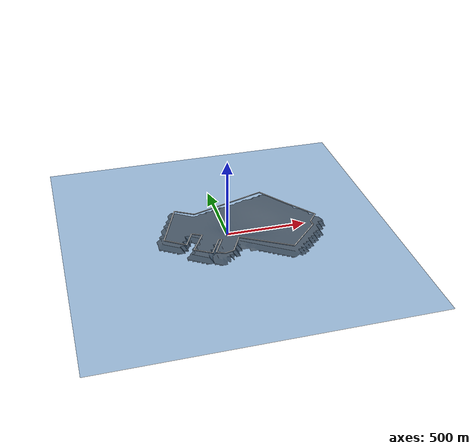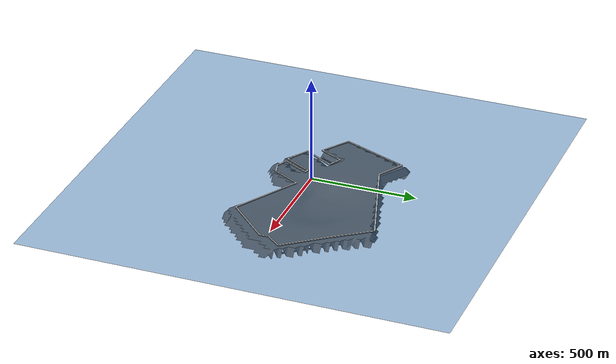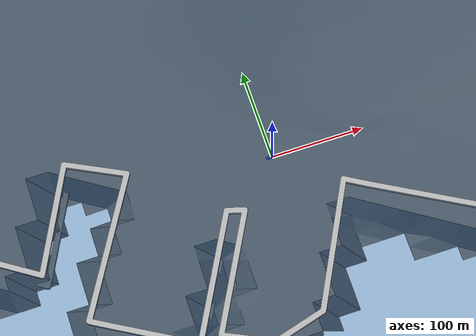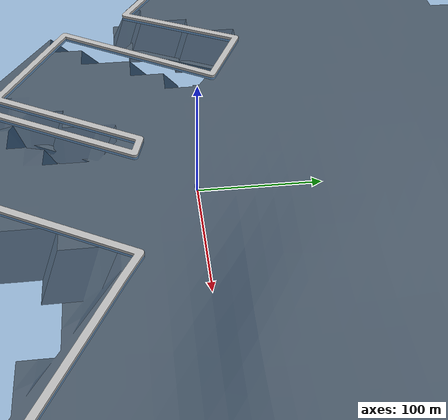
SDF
<?xml version="1.0" ?>
<sdf version="1.9">
  <world name="ocean_world">

    <plugin filename="gz-sim-physics-system" name="gz::sim::systems::Physics"/>
    <plugin filename="gz-sim-user-commands-system" name="gz::sim::systems::UserCommands"/>
    <plugin filename="gz-sim-scene-broadcaster-system" name="gz::sim::systems::SceneBroadcaster"/>
    <plugin filename="gz-sim-navsat-system" name="gz::sim::systems::NavSat"/>
    <plugin filename="gz-sim-sensors-system" name="gz::sim::systems::Sensors">
      <render_engine>ogre</render_engine>
    </plugin>

    <gravity>0 0 -9.81</gravity>

    <spherical_coordinates>
      <surface_model>EARTH_WGS84</surface_model>
      <world_frame_orientation>ENU</world_frame_orientation>
      <latitude_deg>36.509513</latitude_deg>
      <longitude_deg>-6.263074</longitude_deg>
      <elevation>0.0</elevation>
      <heading_deg>0.0</heading_deg>
    </spherical_coordinates>

    <model name="water_plane">
      <static>true</static>
      <pose>0 0 0.0 0 0 0</pose>
      <link name="link">
        <visual name="water_visual">
          <geometry>
            <plane>
              <normal>0 0 0</normal>
              <size>2000 2000</size>
            </plane>
          </geometry>
          <material>
            <ambient>0.0 0.3 0.6 0.4</ambient>
            <diffuse>0.0 0.3 0.6 0.4</diffuse>
            <specular>0.1 0.1 0.1 1.0</specular>
          </material>
          <cast_shadows>false</cast_shadows>
        </visual>
      </link>
    </model>

    <light type="directional" name="sun">
      <cast_shadows>true</cast_shadows>
      <pose>0 0 10 0 0 0</pose>
      <diffuse>0.8 0.8 0.8 1</diffuse>
      <specular>0.2 0.2 0.2 1</specular>
      <direction>-0.5 0.1 -0.9</direction>
    </light>

    <model name="depths">
      <static>true</static>
      <pose>0 0 -20 0 0 0</pose>
      <link name="link_depths">
        <collision name="collision_depths">
          <pose>0 0 -20 0 0 0</pose>
          <geometry>
            <mesh>
              <uri>model://depths/meshes/depth.stl</uri>
              <scale>1 1 1</scale>
            </mesh>
          </geometry>
        </collision>

        <visual name="visual_depths">
          <pose>0 0 -20 0 0 0</pose>
          <geometry>
            <mesh>
              <uri>model://depths/meshes/depth.stl</uri>
              <scale>1 1 1</scale>
            </mesh>
          </geometry>
          <material>
            <ambient>0.5 0.4 0.3 1.0</ambient>
            <diffuse>0.5 0.4 0.3 1.0</diffuse>
          </material>
        </visual>
      </link>
    </model>

    <model name="harbour">
      <static>true</static>
      <include>
        <name>harbour_model</name>
        <uri>model://harbour</uri>
        <pose>0 0 2.0 0 0 0</pose>
      </include>
    </model>

    <include>
      <uri>model://vessel_v3</uri>
      <pose>0 0 0.0 0.0 0 0</pose>
    </include>

    <plugin filename="libASVWaveVisual.so" name="asv::WaveVisual">
      <wavefield>
        <topic>/wavefield/parameters</topic>
        <size>1000 1000</size>
        <cell_count>50 50</cell_count>
        <wave>
          <model>PMS</model>
          <period>5</period>
          <number>3</number>
          <scale>1.5</scale>
          <gain>0.1</gain>
          <direction>1 0</direction>
          <angle>0.4</angle>
          <tau>2.0</tau>
          <amplitude>0.0</amplitude>
          <steepness>0.0</steepness>
        </wave>
      </wavefield>
    </plugin>
  </world>
</sdf>

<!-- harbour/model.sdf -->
<sdf version="1.4">
  <model name="map">
    <link name="link">
      <inertial>
        <mass>15</mass>
        <inertia>
          <ixx>0.0</ixx>
          <ixy>0.0</ixy>
          <ixz>0.0</ixz>
          <iyy>0.0</iyy>
          <iyz>0.0</iyz>
          <izz>0.0</izz>
        </inertia>
      </inertial>
      <collision name="collision">
        <pose>0 0 0 0 0 0</pose>
        <geometry>
          <mesh>
            <uri>model://harbour/meshes/map.stl</uri>
          </mesh>
        </geometry>
      </collision>
      <visual name="visual">
        <pose>0 0 0 0 0 0</pose>
        <geometry>
          <mesh>
            <uri>model://harbour/meshes/map.stl</uri>
          </mesh>
        </geometry>
      </visual>
    </link>
    <static>1</static>
  </model>
</sdf>

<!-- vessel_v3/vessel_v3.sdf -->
<sdf version="1.9">
  <model name="vessel_v3">
    <link name="base_link">
      <inertial>
        <mass>55000.0</mass>
        <pose>0 0 -0.98 0 0 0</pose>
        <inertia>
          <ixx>146366.0</ixx>
          <iyy>805620.0</iyy>
          <izz>913838.0</izz>
          <ixy>0.0000001</ixy> <ixz>0.0000001</ixz> <iyz>0.0000001</iyz>
        </inertia>
      </inertial>

      <collision name="collision_hull">
        <pose>0 0 0.0 0 0 0</pose>
        <geometry>
          <box><size>13.11 5.27 2.04</size></box>
        </geometry>
      </collision>

      <visual name="visual_hull">
        <pose>-2.5 0 0.78 0 0 0</pose>
        <geometry>
          <mesh>
          <uri>model://vessel_v3/meshes/vessel_simplified.stl</uri>
          <scale>0.0556 0.0556 0.0556</scale>
          </mesh>
        </geometry>
        <material>
          <ambient>0.2 0.2 0.8 1.0</ambient>
          <diffuse>0.2 0.2 0.8 1.0</diffuse>
        </material>
      </visual>
    </link>

    <link name="left_propeller">
      <pose>-6.6 -1.0 -0.8 0 0 0</pose>
      <inertial>
        <mass>0.5</mass>
        <inertia>
          <ixx>0.001</ixx><iyy>0.001</iyy><izz>0.001</izz>
          <ixy>0.000000001</ixy><ixz>0.0000000001</ixz><iyz>0.0000000001</iyz>
        </inertia>
      </inertial>

      <visual name="left_prop_visual">
        <pose>0.0 0.0 0.0 0 0 3.14</pose>
        <geometry>
          <mesh>
            <uri>model://vessel_v3/meshes/vessel_propeller_simplified.stl</uri>
            <scale>0.1 0.1 0.1</scale>
          </mesh>
        </geometry>
        <material>
          <ambient>0.2 0.2 0.8 1.0</ambient>
          <diffuse>0.2 0.2 0.8 1.0</diffuse>
        </material>
      </visual>
    </link>

    <link name="right_propeller">
      <pose>-6.6 1.0 -0.8 0 0 0</pose>
      <inertial>
        <mass>0.5</mass>
        <inertia>
          <ixx>0.001</ixx><iyy>0.001</iyy><izz>0.001</izz>
          <ixy>0.000000001</ixy><ixz>0.0000000001</ixz><iyz>0.0000000001</iyz>
        </inertia>
      </inertial>

      <visual name="right_prop_visual">
        <pose>0.0 0.0 0.0 0 0.0 3.14</pose>
        <geometry>
          <mesh>
            <uri>model://vessel_v3/meshes/vessel_propeller_simplified.stl</uri>
            <scale>0.1 0.1 0.1</scale>
          </mesh>
        </geometry>
        <material>
          <ambient>0.2 0.2 0.8 1.0</ambient>
          <diffuse>0.2 0.2 0.8 1.0</diffuse>
        </material>
      </visual>
    </link>

    <joint name="left_engine_joint" type="revolute">
      <parent>base_link</parent>
      <child>left_propeller</child>
      <axis>
        <xyz>1 0 0</xyz>

        <limit>
              <lower>-1e16</lower>
              <upper>1e16</upper>
              <effort>1e9</effort>
              <velocity>10000</velocity>
        </limit>

          <dynamics>
              <damping>0.0</damping>
              <friction>0.0</friction>
        </dynamics>

      </axis>
    </joint>

    <joint name="right_engine_joint" type="revolute">
      <parent>base_link</parent>
      <child>right_propeller</child>
      <axis>
        <xyz>1 0 0</xyz>

      <limit>
            <lower>-1e16</lower>
            <upper>1e16</upper>
            <effort>1e9</effort>
            <velocity>10000</velocity>
        </limit>

        <dynamics>
            <damping>0.0</damping>
            <friction>0.0</friction>
        </dynamics>

      </axis>
    </joint>

    <link name="gps_link">
      <pose>-3.0 0 2.5 0 0 0</pose>
       <inertial>
        <mass>0.1</mass>
        <inertia>
          <ixx>0.001</ixx><iyy>0.001</iyy><izz>0.001</izz>
          <ixy>0.000000001</ixy><ixz>0.0000000001</ixz><iyz>0.0000000001</iyz>
        </inertia>
      </inertial>

      <sensor name="gps_sensor" type="navsat">
        <always_on>1</always_on>
        <update_rate>10</update_rate> <topic>/vessel_v3/gps/fix</topic>
      </sensor>
    </link>

    <joint name="gps_joint" type="fixed">
      <parent>base_link</parent>
      <child>gps_link</child>
    </joint>

    <link name="sensors_link">
      <pose>6.0 0 1.8 0 0 0</pose>
      <inertial>
        <mass>0.5</mass>
        <inertia>
          <ixx>0.001</ixx><iyy>0.001</iyy><izz>0.001</izz>
          <ixy>0.000000001</ixy><ixz>0.0000000001</ixz><iyz>0.0000000001</iyz>
        </inertia>
      </inertial>

      <sensor name="camera" type="camera">
        <pose>0 0 0.2 0 0 0</pose> <always_on>1</always_on>
        <update_rate>30</update_rate>
        <topic>/vessel_v3/camera</topic>
        <camera>
          <horizontal_fov>1.396</horizontal_fov> <image>
            <width>800</width>
            <height>600</height>
            <format>R8G8B8</format>
          </image>
          <clip>
            <near>0.1</near>
            <far>150</far>
          </clip>
        </camera>
      </sensor>

      <sensor name="gpu_lidar" type="gpu_lidar">
        <pose>0 0 0.5 0 0 0</pose>
        <always_on>1</always_on>
        <visualize>true</visualize>
        <update_rate>10</update_rate>
        <topic>/vessel_v3/lidar</topic>
        <lidar>
          <scan>
            <horizontal>
              <samples>640</samples>
              <resolution>1</resolution>
              <min_angle>-3.14159</min_angle> <max_angle>3.14159</max_angle>
            </horizontal>
            <vertical>
              <samples>16</samples>
              <resolution>1</resolution>
              <min_angle>-0.261</min_angle> <max_angle>0.261</max_angle>
            </vertical>
          </scan>
          <range>
            <min>0.5</min>
            <max>100.0</max>
            <resolution>0.01</resolution>
          </range>
        </lidar>
      </sensor>
    </link>

    <link name="sonar_link">
      <pose>8.0 0 -2.5 0 1.57 0</pose>
      <inertial>
        <mass>0.5</mass>
        <inertia>
          <ixx>0.001</ixx><iyy>0.001</iyy><izz>0.001</izz>
          <ixy>0.000000001</ixy><ixz>0.0000000001</ixz><iyz>0.0000000001</iyz>
        </inertia>
      </inertial>
      <sensor name="sonar" type="gpu_lidar">
        <pose>0 0 0 0 0 0</pose>
        <always_on>1</always_on>
        <visualize>true</visualize>
        <update_rate>5</update_rate>
        <topic>/vessel_v3/sonar</topic>
        <lidar>
          <scan>
            <horizontal>
              <samples>32</samples>
              <resolution>1</resolution>
              <min_angle>-0.261</min_angle> <max_angle>0.261</max_angle>
            </horizontal>
            <vertical> <samples>32</samples>
              <resolution>1</resolution>
              <min_angle>-0.349</min_angle>
              <!-- 20 degrees -->
              <max_angle>0.349</max_angle>
            </vertical>
          </scan>
          <range>
            <min>0.5</min>
            <max>500.0</max>
            <resolution>0.1</resolution>
          </range>
        </lidar>
      </sensor>
    </link>

    <joint name="sensors_joint" type="fixed">
      <parent>base_link</parent>
      <child>sensors_link</child>
    </joint>

    <joint name="sonar_joint" type="fixed">
      <parent>base_link</parent>
      <child>sonar_link</child>
    </joint>

    <plugin filename="gz-sim-hydrodynamics-system" name="gz::sim::systems::Hydrodynamics">
      <link_name>base_link</link_name>
      <xU>-2750.0</xU>
      <xUabsU>-1500.0</xUabsU>
      <yV>-5500.0</yV>
      <yVabsV>-4028.0</yVabsV>
      <zW>-5500.0</zW>
      <zWabsW>-15000.0</zWabsW>
      <kP>-14636.0</kP>
      <kPabsP>-100000.0</kPabsP>
      <mQ>-80562.0</mQ>
      <mQabsQ>-200000.0</mQabsQ>
      <nR>-60922.0</nR>
      <nRabsR>-283000.0</nRabsR>
    </plugin>

    <plugin
      filename="libASVSurface.so"
      name="asv::Surface">
      <link_name>base_link</link_name>
      <hull_length>13.11</hull_length>
      <hull_radius>1.02</hull_radius>
      <fluid_density>1025</fluid_density>
      <points>
        <point>6.0 2.0 0</point>
        <point>6.0 -2.0 0</point>
        <point>-6.0 2.0 0</point>
        <point>-6.0 -2.0 0</point>
      </points>
      <wavefield>
        <topic>/wavefield/parameters</topic>
      </wavefield>
    </plugin>

    <plugin filename="gz-sim-pose-publisher-system" name="gz::sim::systems::PosePublisher">
      <publish_link_pose>true</publish_link_pose>
      <use_pose_vector_msg>true</use_pose_vector_msg>
      <publish_nested_model_pose>true</publish_nested_model_pose>
      <update_frequency>50</update_frequency>
    </plugin>

    <plugin filename="gz-sim-thruster-system" name="gz::sim::systems::Thruster">
      <namespace>vessel_v3</namespace>
      <joint_name>left_engine_joint</joint_name>
      <max_thrust_cmd>30000.0</max_thrust_cmd>
      <min_thrust_cmd>-20000.0</min_thrust_cmd>
      <thrust_coefficient>0.0126</thrust_coefficient>
      <velocity_control>false</velocity_control>
      <fluid_density>1025.0</fluid_density>
      <propeller_diameter>1.2</propeller_diameter>
    </plugin>

    <plugin filename="gz-sim-thruster-system" name="gz::sim::systems::Thruster">
      <namespace>vessel_v3</namespace>
      <joint_name>right_engine_joint</joint_name>
      <max_thrust_cmd>30000.0</max_thrust_cmd>
      <min_thrust_cmd>-20000.0</min_thrust_cmd>
      <velocity_control>false</velocity_control>
      <thrust_coefficient>0.0126</thrust_coefficient>
      <fluid_density>1025.0</fluid_density>
      <propeller_diameter>1.2</propeller_diameter>
    </plugin>

    <plugin filename="gz-sim-joint-state-publisher-system" name="gz::sim::systems::JointStatePublisher"/>

  </model>
</sdf>
